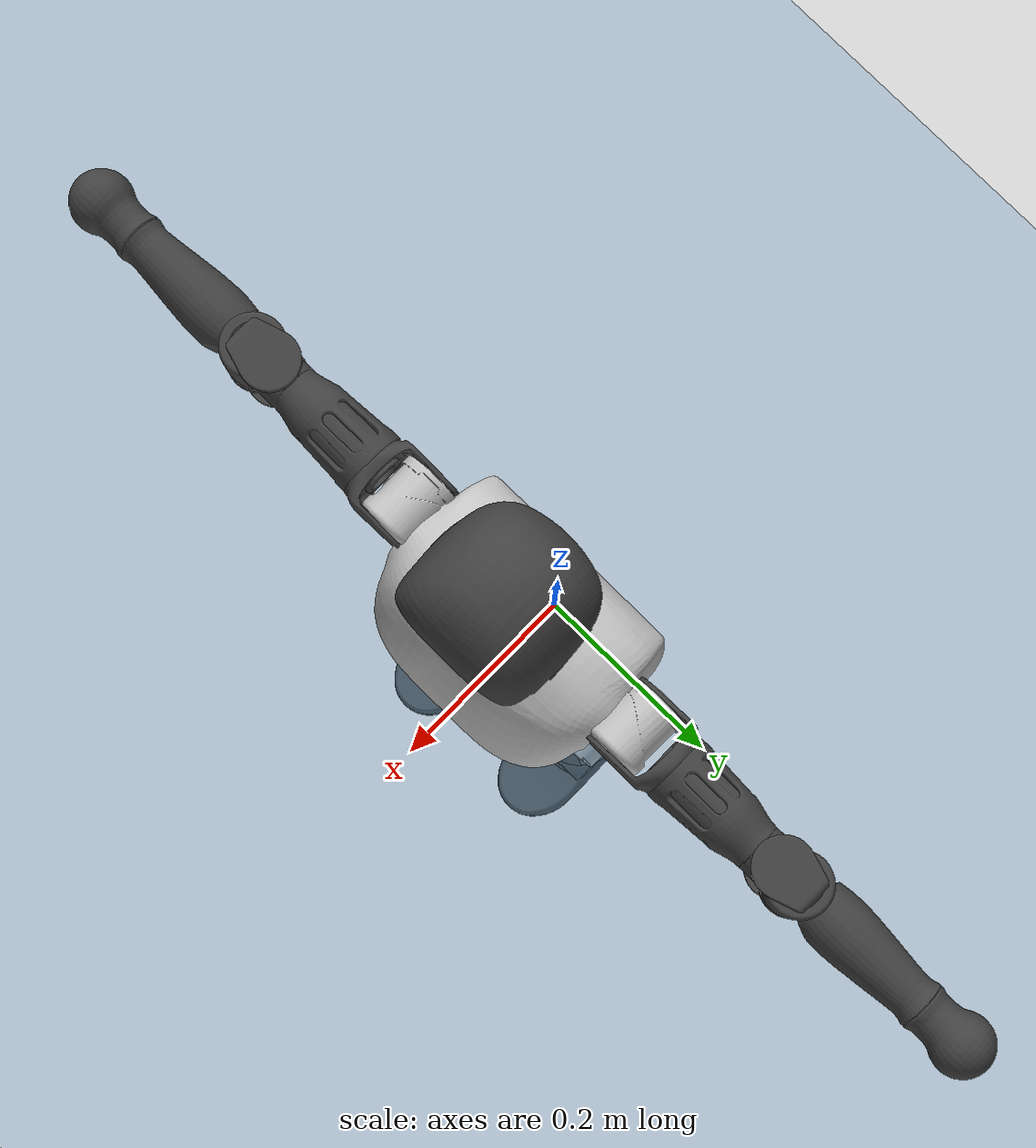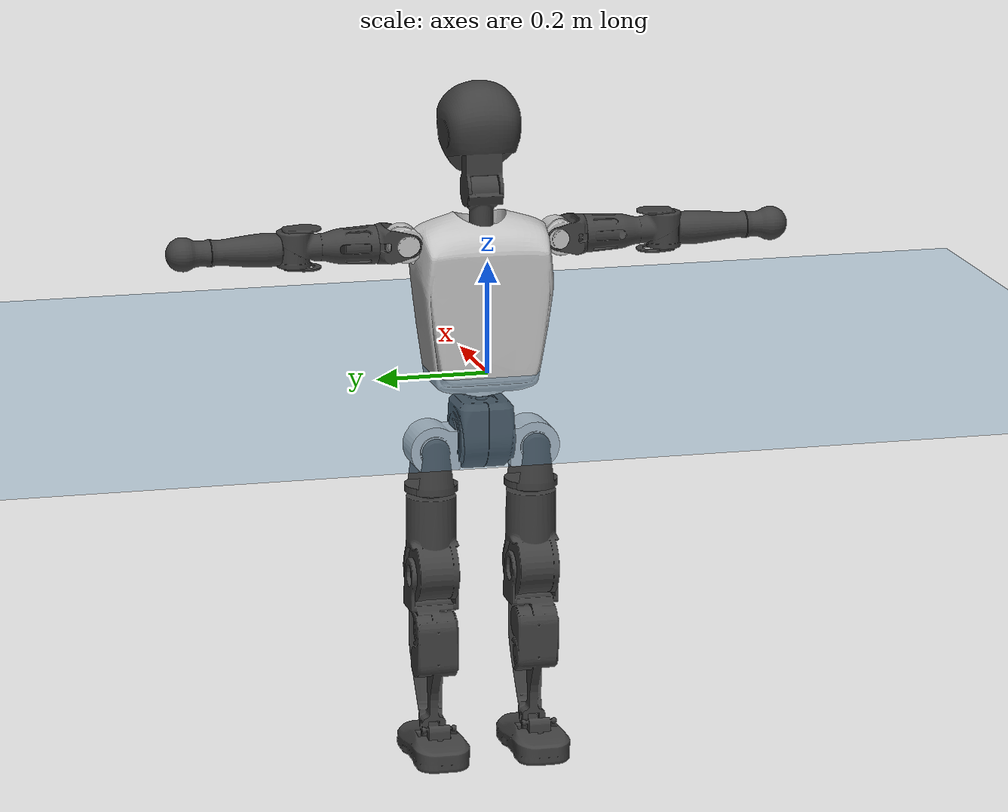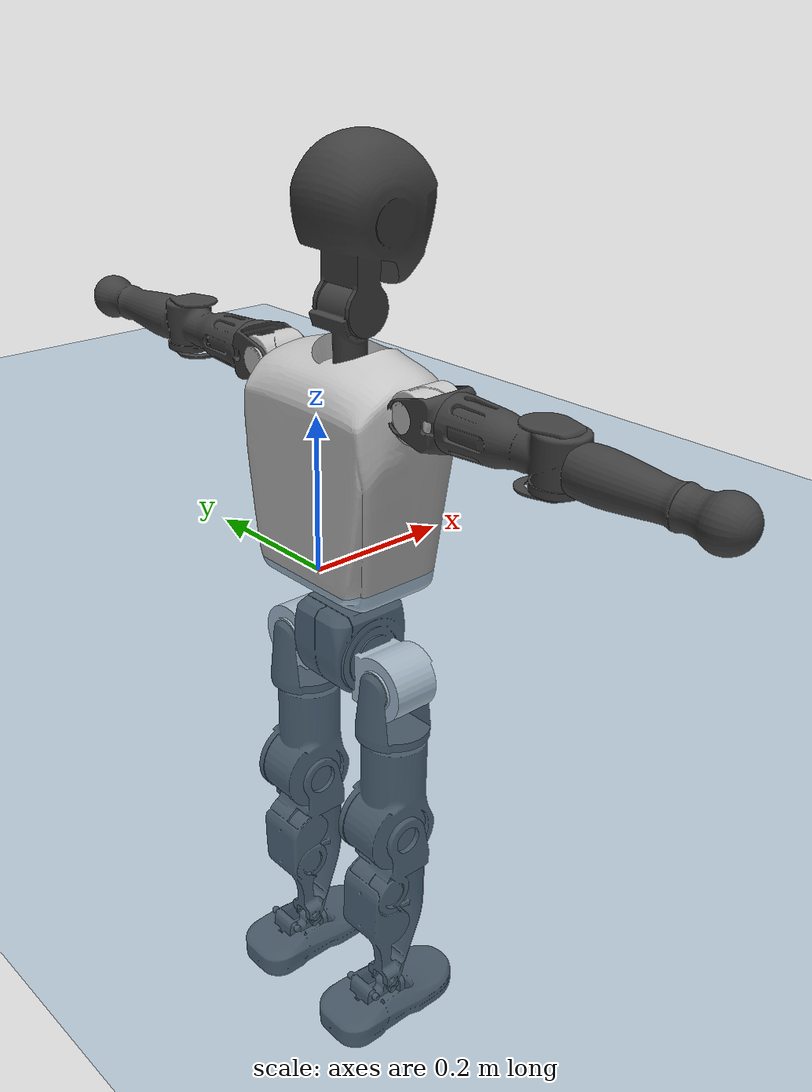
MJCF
<mujoco model="T1">
  <compiler angle="radian" assetdir="assets" balanceinertia="true" inertiafromgeom="false"/>

  <option timestep="0.005" density="1.2" viscosity="2e-05"/>

  <size nkey="1"/>

  <visual>
    <quality shadowsize="8192"/>
    <map shadowclip="0.5"/>
  </visual>

  <default>
    <default class="/">
      <joint armature="0.01" damping="0.01" frictionloss="0.1"/>
      <geom contype="0" conaffinity="0" group="1" solref="-1000 -80"/>
      <site size="0.01 0.005 0.005" group="5"/>
      <general forcelimited="true" biastype="affine" gainprm="25" biasprm="0 -25 -0.6"/>
      <default class="t1">
        <geom rgba="0.25 0.25 0.25 1"/>
        <default class="visual">
          <geom type="mesh" group="2"/>
        </default>
        <default class="collision">
          <geom group="3"/>
        </default>
        <default class="foot">
          <geom size="0.1115 0.05 0.015" type="box" condim="6" group="4" priority="1" solimp="0.015 1 0.015"/>
        </default>
        <default class="reward_collision_sphere">
          <geom group="5" rgba="1 0 0 1"/>
        </default>
      </default>
    </default>
  </default>

  <asset>
    <texture type="skybox" colorspace="auto" name="//unnamed_texture_0" builtin="gradient" rgb1="0.95 0.95 0.95" rgb2="0.95 0.95 0.95" width="100" height="600"/>
    <texture type="2d" colorspace="auto" name="texplane" builtin="checker" rgb1="0.345 0.575 0.748" rgb2="0.345 0.575 0.748" markrgb="1 1 1" width="512" height="512"/>
    <material name="MatPlane" class="/" texture="texplane" texuniform="true" texrepeat="2 2" specular="0.9"/>
    <mesh name="Trunk" class="/" file="Trunk.stl"/>
    <mesh name="H1" class="/" file="H1.stl"/>
    <mesh name="H2" class="/" file="H2.stl"/>
    <mesh name="AL1" class="/" file="AL1.stl"/>
    <mesh name="AL2" class="/" file="AL2.stl"/>
    <mesh name="AL3" class="/" file="AL3.stl"/>
    <mesh name="left_hand_link" class="/" file="left_hand_link.stl"/>
    <mesh name="AR1" class="/" file="AR1.stl"/>
    <mesh name="AR2" class="/" file="AR2.stl"/>
    <mesh name="AR3" class="/" file="AR3.stl"/>
    <mesh name="right_hand_link" class="/" file="right_hand_link.stl"/>
    <mesh name="Waist" class="/" file="Waist.stl"/>
    <mesh name="Hip_Pitch_Left" class="/" file="Hip_Pitch_Left.stl"/>
    <mesh name="Hip_Roll_Left" class="/" file="Hip_Roll_Left.stl"/>
    <mesh name="Hip_Yaw_Left" class="/" file="Hip_Yaw_Left.stl"/>
    <mesh name="Shank_Left" class="/" file="Shank_Left.stl"/>
    <mesh name="Ankle_Cross_Left" class="/" file="Ankle_Cross_Left.stl"/>
    <mesh name="left_foot_link" class="/" file="left_foot_link.stl"/>
    <mesh name="Hip_Pitch_Right" class="/" file="Hip_Pitch_Right.stl"/>
    <mesh name="Hip_Roll_Right" class="/" file="Hip_Roll_Right.stl"/>
    <mesh name="Hip_Yaw_Right" class="/" file="Hip_Yaw_Right.stl"/>
    <mesh name="Shank_Right" class="/" file="Shank_Right.stl"/>
    <mesh name="Ankle_Cross_Right" class="/" file="Ankle_Cross_Right.stl"/>
    <mesh name="right_foot_link" class="/" file="right_foot_link.stl"/>
  </asset>

  <worldbody>
    <geom name="floor" class="/" size="100 100 0.125" type="plane" group="0" material="MatPlane"/>
    <light name="toplight_shadow" class="/" pos="0 0 5" dir="0.0990148 0.0990148 -0.990148" type="directional" ambient="0.04 0.04 0.04" diffuse="0.55 0.55 0.55" specular="0.12 0.12 0.12"/>
    <light name="toplight_fill" class="/" pos="0 0 5" dir="0.0990148 0.0990148 -0.990148" type="directional" castshadow="false" ambient="0.04 0.04 0.04" diffuse="0.3 0.3 0.3" specular="0.08 0.08 0.08"/>
    <body name="trunk" childclass="t1" pos="0.000783686 0.00016343 -0.000945727" quat="1 0.000167772 -0.00025932 0.000333575">
      <inertial pos="0.0441134 6.27394e-05 0.110388" quat="0.999943 0.00212029 -0.0104559 -3.86312e-05" mass="8.70048" diaginertia="0.0320661 0.0363226 0.0730806"/>
      <joint name="//unnamed_joint_0" type="free" armature="0" damping="0" frictionloss="0"/>
      <geom name="//unnamed_geom_1" class="visual" rgba="0.76 0.76 0.76 1" mesh="Trunk"/>
      <geom name="//unnamed_geom_2" class="collision" size="0.0682411 0.0909881 0.136482" pos="0.0486699 0 0.126984" type="box"/>
      <geom name="//unnamed_geom_3" class="reward_collision_sphere" size="0.104636" pos="0.0486699 0 0.10582"/>
      <geom name="//unnamed_geom_4" class="reward_collision_sphere" size="0.0136482" pos="0.0486699 0.0731239 0"/>
      <geom name="//unnamed_geom_5" class="reward_collision_sphere" size="0.0136482" pos="0.0486699 -0.0731239 0"/>
      <geom name="//unnamed_geom_6" class="reward_collision_sphere" size="0.0136482" pos="0.0486699 0.09205 0.190476"/>
      <geom name="//unnamed_geom_7" class="reward_collision_sphere" size="0.0136482" pos="0.0486699 -0.09205 0.190476"/>
      <site name="imu" pos="0.00406318 -0.00218244 -0.00158325" size="0.00909881"/>
      <camera name="track" pos="0 -1.72056 0" quat="0.707107 0.707107 0 0" mode="trackcom"/>
      <camera name="ego_camera" pos="0.0989621 0 0.444443" quat="-0.5 -0.5 0.5 0.5"/>
      <body name="H1" pos="0.0502182 -0.000781817 0.256426" quat="1 0.000458805 0.000114045 0.000161931">
        <inertial pos="-0.00196774 -0.00165481 0.0598591" quat="0.763693 -0.0161008 0.00783483 0.645331" mass="0.336019" diaginertia="8.56851e-05 0.000104884 0.000201947"/>
        <joint name="AAHead_yaw" pos="0 0 0" axis="-0.00204886 -0.00115241 0.999997" range="-1.55479 1.58133" armature="0.00869212" damping="0.00760912" frictionloss="0.0936188"/>
        <geom name="//unnamed_geom_8" class="visual" mesh="H1"/>
        <body name="H2" pos="-0.000627787 -0.000708355 0.0649982" quat="1 -1.73397e-05 0.000149467 8.8988e-05">
          <inertial pos="0.00561409 -0.000406284 0.104194" quat="0.988365 0.107503 -0.0730702 -0.0789802" mass="0.476874" diaginertia="0.000715419 0.000895071 0.00229662"/>
          <joint name="Head_pitch" pos="0 0 0" axis="0.000658861 -1 -0.000211741" range="-1.23199 0.331696" armature="0.00932527" damping="0.00504818" frictionloss="0.0939383"/>
          <geom name="//unnamed_geom_9" class="visual" mesh="H2"/>
          <geom name="//unnamed_geom_10" class="collision" size="0.0727905" pos="0.00811165 0 0.116402"/>
          <geom name="//unnamed_geom_11" class="reward_collision_sphere" size="0.0818893" pos="0.0162233 0 0.10582"/>
        </body>
      </body>
      <body name="AL1" pos="0.047743 0.0927472 0.232288" quat="1 3.52366e-05 0.000443093 8.10761e-06">
        <inertial pos="-0.000246263 0.0385253 -0.00111224" quat="0.504913 0.498166 -0.503801 0.493028" mass="0.406642" diaginertia="0.000491235 0.000620581 0.000393414"/>
        <joint name="Left_Shoulder_Pitch" pos="0 0 0" axis="0.000257577 0.999994 -0.00351983" range="-3.309 1.23445" armature="0.00905795" damping="0.0046801" frictionloss="0.0930946"/>
        <geom name="//unnamed_geom_12" class="visual" rgba="0.76 0.76 0.76 1" mesh="AL1"/>
        <body name="AL2" pos="0.000292236 0.041353 0.000306615" quat="1 0.000221032 -0.000160305 0.000665066">
          <inertial pos="0.00312119 0.0311667 -0.000223434" quat="0.48796 0.511956 -0.487533 0.511965" mass="0.120919" diaginertia="0.000141266 0.00016438 0.00023483"/>
          <joint name="Left_Shoulder_Roll" pos="0 0 0" axis="-0.999995 0.00152761 0.00271325" range="-1.56133 1.74064" armature="0.00946103" damping="0.000975263" frictionloss="0.0932739"/>
          <geom name="//unnamed_geom_13" class="visual" mesh="AL2"/>
          <body name="AL3" pos="0.000387182 0.0537613 -0.000414368" quat="1 -6.38913e-06 0.000280452 -1.19919e-05">
            <inertial pos="-0.000193437 0.0733593 0.000402831" quat="0.707732 0.706468 -0.00412305 0.000979504" mass="0.791733" diaginertia="0.0045622 0.00611439 0.000821218"/>
            <joint name="Left_Elbow_Pitch" pos="0 0 0" axis="0.000214799 -0.999999 0.00147543" range="-2.24498 2.24717" armature="0.00942164" damping="0.00188734" frictionloss="0.0892113"/>
            <geom name="//unnamed_geom_14" class="visual" mesh="AL3"/>
            <geom name="//unnamed_geom_15" class="collision" size="0.0272964 0.0682411" pos="0 0.043014 0" quat="0.707105 0.707108 0 0" type="cylinder"/>
            <geom name="//unnamed_geom_16" class="reward_collision_sphere" size="0.0327557"/>
            <body name="left_hand_link" pos="-0.000409225 0.126895 -0.000100097" quat="1 0.000340633 3.62049e-05 0.000192217">
              <inertial pos="-3.60357e-05 0.094212 0.000556474" quat="0.708302 0.705906 0.00158094 -0.00152884" mass="0.243396" diaginertia="0.00283026 0.00380352 0.000286055"/>
              <joint name="Left_Elbow_Yaw" pos="0 0 0" axis="-0.000310587 0.00140578 0.999999" range="-2.4415 -0.00258044" armature="0.0092044" damping="0.0105458" frictionloss="0.0868296"/>
              <geom name="//unnamed_geom_17" class="visual" mesh="left_hand_link"/>
              <geom name="//unnamed_geom_18" class="collision" size="0.0272964 0.0796146" pos="0 0.111837 0" quat="0.707105 0.707108 0 0" type="cylinder"/>
              <geom name="//unnamed_geom_19" class="reward_collision_sphere" size="0.0454941"/>
              <geom name="//unnamed_geom_20" class="reward_collision_sphere" size="0.0318458" pos="0 0.0946309 0"/>
              <geom name="//unnamed_geom_21" class="reward_collision_sphere" size="0.0318458" pos="0 0.18496 0"/>
            </body>
          </body>
        </body>
      </body>
      <body name="AR1" pos="0.0457692 -0.0915792 0.231595" quat="1 0.000193729 0.000191176 2.41028e-05">
        <inertial pos="-0.0014534 -0.0394901 0.000560556" quat="0.504734 0.496378 -0.502874 0.495954" mass="0.398864" diaginertia="0.000483819 0.000608294 0.000388154"/>
        <joint name="Right_Shoulder_Pitch" pos="0 0 0" axis="0.000400539 -1 -0.000154803" stiffness="0.000338765" range="-1.22424 3.31065" armature="0.00952744" damping="0.00425527" frictionloss="0.0925674"/>
        <geom name="//unnamed_geom_22" class="visual" rgba="0.76 0.76 0.76 1" mesh="AR1"/>
        <body name="AR2" pos="-0.00114041 -0.0397309 0.000403951" quat="1 -2.03669e-05 1.23108e-05 -2.17129e-05">
          <inertial pos="0.00261564 -0.032621 -0.000372585" quat="0.514738 0.48942 -0.509969 0.485226" mass="0.11897" diaginertia="0.000141864 0.000160839 0.000233579"/>
          <joint name="Right_Shoulder_Roll" pos="0 0 0" axis="-0.999986 -0.00405581 -0.00351711" stiffness="0.00195099" range="-1.7373 1.57996" armature="0.00907059" damping="0.00372014" frictionloss="0.0902833"/>
          <geom name="//unnamed_geom_23" class="visual" mesh="AR2"/>
          <body name="AR3" pos="-0.000938194 -0.0525506 0.00100409" quat="1 -6.42544e-06 0.000188098 -0.000174618">
            <inertial pos="-0.00104763 -0.0725501 -0.000415353" quat="0.707233 0.706981 -0.000517545 0.000433542" mass="0.762914" diaginertia="0.00448108 0.00594987 0.000809084"/>
            <joint name="Right_Elbow_Pitch" pos="0 0 0" axis="0.00347798 0.999994 -0.000826924" range="-2.27037 2.27359" armature="0.00942203" damping="0.00808126" frictionloss="0.0883434"/>
            <geom name="//unnamed_geom_24" class="visual" mesh="AR3"/>
            <geom name="//unnamed_geom_25" class="collision" size="0.0272964 0.0682411" pos="0 -0.043014 0" quat="0.707105 0.707108 0 0" type="cylinder"/>
            <geom name="//unnamed_geom_26" class="reward_collision_sphere" size="0.0327557"/>
            <body name="right_hand_link" pos="-0.000525824 -0.126163 -0.000439104" quat="1 0.000162626 5.81822e-05 0.000198459">
              <inertial pos="-0.000788041 -0.0940555 -0.000241749" quat="0.706594 0.707597 0.00458463 -0.00313655" mass="0.250879" diaginertia="0.00283969 0.00383186 0.000281544"/>
              <joint name="Right_Elbow_Yaw" pos="0 0 0" axis="-0.00112902 0.00499724 0.999987" range="-0.0132495 2.46032" armature="0.00885335" damping="0.00998393" frictionloss="0.0905222"/>
              <geom name="//unnamed_geom_27" class="visual" mesh="right_hand_link"/>
              <geom name="//unnamed_geom_28" class="collision" size="0.0272964 0.0796146" pos="0 -0.111837 0" quat="0.707105 0.707108 0 0" type="cylinder"/>
              <geom name="//unnamed_geom_29" class="reward_collision_sphere" size="0.0454941"/>
              <geom name="//unnamed_geom_30" class="reward_collision_sphere" size="0.0318458" pos="0 -0.0946309 0"/>
              <geom name="//unnamed_geom_31" class="reward_collision_sphere" size="0.0318458" pos="0 -0.18496 0"/>
            </body>
          </body>
        </body>
      </body>
      <body name="Waist" pos="0.0500958 -0.0010626 -0.121499" quat="1 -7.71729e-05 0.000312914 0.000358353">
        <inertial pos="0.00170952 -0.000868125 0.00683809" quat="0.98399 -0.0038546 -0.178146 0.00360172" mass="1.96309" diaginertia="0.00188703 0.00249023 0.00627557"/>
        <joint name="Waist" pos="0 0 0" axis="0.00133065 -0.000805986 0.999999" range="-1.56752 1.57077" armature="0.00879767" damping="0.013703" frictionloss="0.0905695"/>
        <geom name="//unnamed_geom_32" class="visual" mesh="Waist"/>
        <body name="Hip_Pitch_Left" pos="-0.000174073 0.0915777 0.000989507" quat="1 -1.35263e-05 7.20068e-07 -3.61707e-05">
          <inertial pos="0.00192217 -0.00742654 -0.0199088" quat="0.975558 0.218873 0.0194723 0.00124894" mass="0.764139" diaginertia="0.000633727 0.00068897 0.00165132"/>
          <joint name="Left_Hip_Pitch" pos="0 0 0" axis="-0.000264115 0.999998 -0.00205643" stiffness="0.00148637" range="-1.80548 1.58229" armature="0.00903231" damping="0.0037165" frictionloss="0.0887572"/>
          <geom name="//unnamed_geom_33" class="visual" rgba="0.76 0.76 0.76 1" mesh="Hip_Pitch_Left"/>
          <body name="Hip_Roll_Left" pos="0.000386784 -0.000239212 -0.0208872" quat="1 -0.00030464 -0.000243272 -0.000146936">
            <inertial pos="0.00188343 5.30907e-06 -0.0567196" quat="0.706862 -0.00824553 -0.0042772 0.70729" mass="0.283349" diaginertia="0.000608512 0.000703273 0.000669175"/>
            <joint name="Left_Hip_Roll" pos="0 0 0" axis="-0.999989 0.00452252 -0.00132072" stiffness="0.00160829" range="-1.56482 0.185055" armature="0.0090314" damping="0.0110634" frictionloss="0.0936176"/>
            <geom name="//unnamed_geom_34" class="visual" mesh="Hip_Roll_Left"/>
            <geom name="//unnamed_geom_35" class="reward_collision_sphere" size="0.0500435"/>
            <body name="Hip_Yaw_Left" pos="0.00185152 -0.000506007 -0.0874608" quat="1 1.37133e-05 0.000166273 -6.02419e-05">
              <inertial pos="-0.00552908 -0.000569904 -0.0949937" quat="0.699098 -0.0306048 -0.0320309 0.713652" mass="1.65519" diaginertia="0.00915236 0.0121404 0.0035059"/>
              <joint name="Left_Hip_Yaw" pos="0 0 0" axis="-0.000253871 7.70835e-05 -1" stiffness="0.00190328" range="-1.02409 1.01194" armature="0.0090885" damping="0.0070306" frictionloss="0.0902276"/>
              <geom name="//unnamed_geom_36" class="visual" mesh="Hip_Yaw_Left"/>
              <geom name="//unnamed_geom_37" class="collision" size="0.0454941 0.0727905" type="cylinder"/>
              <body name="Shank_Left" pos="-0.0112732 0.000647441 -0.142557" quat="1 0.000183394 0.000149268 0.000143006">
                <inertial pos="-0.00461407 -0.00046013 -0.131697" quat="0.997658 -0.000304226 -0.0227206 0.0645201" mass="1.3062" diaginertia="0.0124127 0.0162843 0.00250984"/>
                <joint name="Left_Knee_Pitch" pos="0 0 0" axis="-0.000448238 1 0.000360195" range="-0.0205824 2.34083" armature="0.00890728" damping="0.00425758" frictionloss="0.0982353"/>
                <geom name="//unnamed_geom_38" class="visual" mesh="Shank_Left"/>
                <geom name="//unnamed_geom_39" class="collision" size="0.0454941 0.0682411" pos="0 0 -0.126984" type="cylinder"/>
                <geom name="//unnamed_geom_40" class="reward_collision_sphere" size="0.0591423"/>
                <body name="Ankle_Cross_Left" pos="-0.000555016 -5.36648e-05 -0.295855" quat="1 -7.85937e-05 0.000104807 -7.9731e-05">
                  <inertial pos="-0.00265102 0.0002454 -0.00938955" quat="0.445268 0.550775 0.550017 0.442566" mass="0.0544111" diaginertia="9.96511e-06 1.16906e-05 1.46909e-05"/>
                  <joint name="Left_Ankle_Pitch" pos="0 0 0" axis="0.00603496 0.999981 0.000979651" range="-0.856728 0.34699" armature="0.00911069" damping="0.00834188" frictionloss="0.0951969"/>
                  <geom name="//unnamed_geom_41" class="visual" mesh="Ankle_Cross_Left"/>
                  <body name="left_foot_link" pos="-0.000761398 -0.000951542 -0.0124488" quat="1 0.000442103 0.000461075 -3.53181e-05">
                    <inertial pos="0.000456218 -0.000117824 -0.00890681" quat="2.62265e-05 0.620921 -0.00039654 0.783873" mass="0.509362" diaginertia="0.000938962 0.00111009 0.00288013"/>
                    <joint name="Left_Ankle_Roll" pos="0 0 0" axis="-0.999999 -0.000690767 -0.000769412" range="-0.445044 0.458781" armature="0.00907067" damping="0.00865445" frictionloss="0.0881417"/>
                    <geom name="//unnamed_geom_42" class="visual" mesh="left_foot_link"/>
                    <geom name="left_foot" class="foot" size="0.102719 0.0457181 0.0132014" pos="0.00811165 0 -0.015873"/>
                    <geom name="//unnamed_geom_44" class="reward_collision_sphere" size="0.0473138" pos="0.00811165 0 -0.015873"/>
                    <geom name="//unnamed_geom_45" class="reward_collision_sphere" size="0.0272964" pos="0.0770607 -0.0197865 -0.015873"/>
                    <geom name="//unnamed_geom_46" class="reward_collision_sphere" size="0.0272964" pos="-0.0567815 -0.0197865 -0.015873"/>
                    <site name="left_foot" class="foot" pos="0.00811165 0 -0.015873" size="0.00909881"/>
                  </body>
                </body>
              </body>
            </body>
          </body>
        </body>
        <body name="Hip_Pitch_Right" pos="-0.000261616 -0.0905142 -0.000239969" quat="1 -6.06622e-06 -6.53149e-06 4.88732e-05">
          <inertial pos="0.00135799 0.00671267 -0.0189467" quat="0.973308 -0.228969 0.0149738 -0.00458703" mass="0.766303" diaginertia="0.00063146 0.000683399 0.0016327"/>
          <joint name="Right_Hip_Pitch" pos="0 0 0" axis="0.000257402 -1 0.000476801" range="-1.57286 1.79516" armature="0.00909573" damping="0.00786512" frictionloss="0.0886312"/>
          <geom name="//unnamed_geom_47" class="visual" rgba="0.76 0.76 0.76 1" mesh="Hip_Pitch_Right"/>
          <body name="Hip_Roll_Right" pos="-8.42568e-07 -0.000406468 -0.0202364" quat="1 -0.00021853 -9.15662e-05 -1.71132e-05">
            <inertial pos="0.00104963 0.000805942 -0.0565703" quat="0.709944 -0.00810272 -0.0047899 0.704196" mass="0.292085" diaginertia="0.000616231 0.000718012 0.000692236"/>
            <joint name="Right_Hip_Roll" pos="0 0 0" axis="-0.999999 -0.000840454 -0.00065988" range="-0.184413 1.56177" armature="0.00863703" damping="0.00817667" frictionloss="0.0952787"/>
            <geom name="//unnamed_geom_48" class="visual" mesh="Hip_Roll_Right"/>
            <geom name="//unnamed_geom_49" class="reward_collision_sphere" size="0.0500435"/>
            <body name="Hip_Yaw_Right" pos="0.000755152 -0.000202814 -0.0872432" quat="1 -4.68975e-07 -1.56689e-06 9.44082e-05">
              <inertial pos="-0.00583099 -0.000680346 -0.0935552" quat="0.714021 -0.033303 -0.0323403 0.698584" mass="1.65324" diaginertia="0.00913211 0.0119902 0.00345661"/>
              <joint name="Right_Hip_Yaw" pos="0 0 0" axis="0.000974457 -0.00354315 -0.999993" stiffness="0.00198138" range="-1.01361 1.00536" armature="0.00858115" damping="0.010679" frictionloss="0.0889467"/>
              <geom name="//unnamed_geom_50" class="visual" mesh="Hip_Yaw_Right"/>
              <geom name="//unnamed_geom_51" class="collision" size="0.0454941 0.0727905" type="cylinder"/>
              <body name="Shank_Right" pos="-0.0102094 -0.000347631 -0.141165" quat="1 -9.43484e-05 5.02157e-05 6.91265e-05">
                <inertial pos="-0.00403483 0.00135117 -0.130242" quat="0.999205 0.000446346 -0.023087 -0.0325077" mass="1.36734" diaginertia="0.0127695 0.0168336 0.00267605"/>
                <joint name="Right_Knee_Pitch" pos="0 0 0" axis="0.00167954 -0.999999 1.61177e-05" range="-2.34162 -0.00112823" armature="0.00911257" damping="0.00990821" frictionloss="0.0867998"/>
                <geom name="//unnamed_geom_52" class="visual" mesh="Shank_Right"/>
                <geom name="//unnamed_geom_53" class="collision" size="0.0454941 0.0682411" pos="0 0 -0.126984" type="cylinder"/>
                <geom name="//unnamed_geom_54" class="reward_collision_sphere" size="0.0591423"/>
                <body name="Ankle_Cross_Right" pos="-0.000539672 -0.00118579 -0.296525" quat="1 -4.19556e-05 3.38141e-05 1.69683e-05">
                  <inertial pos="-0.00331342 -0.00058088 -0.00862656" quat="0.440211 0.552497 0.549451 0.446169" mass="0.0552" diaginertia="1.01241e-05 1.21118e-05 1.52147e-05"/>
                  <joint name="Right_Ankle_Pitch" pos="0 0 0" axis="0.00430685 -0.999968 -0.00670282" stiffness="0.00141395" range="-0.339446 0.863276" armature="0.00924421" damping="0.00782088" frictionloss="0.0897652"/>
                  <geom name="//unnamed_geom_55" class="visual" mesh="Ankle_Cross_Right"/>
                  <body name="right_foot_link" pos="-0.000136028 -0.000857607 -0.0131252" quat="1 -2.70019e-05 -0.000122956 -5.15809e-05">
                    <inertial pos="0.00104144 -8.12384e-05 -0.0104039" quat="0.000301074 0.620422 -0.00162316 0.784266" mass="0.516811" diaginertia="0.000964703 0.0011256 0.00293678"/>
                    <joint name="Right_Ankle_Roll" pos="0 0 0" axis="-0.999998 -0.0014088 0.00162984" range="-0.438683 0.452005" armature="0.00885456" damping="0.00772519" frictionloss="0.0874978"/>
                    <geom name="//unnamed_geom_56" class="visual" mesh="right_foot_link"/>
                    <geom name="right_foot" class="foot" size="0.0991597 0.0452672 0.0141567" pos="0.00811165 0 -0.015873"/>
                    <geom name="//unnamed_geom_58" class="reward_collision_sphere" size="0.0363952"/>
                    <geom name="//unnamed_geom_59" class="reward_collision_sphere" size="0.0272964" pos="0.00811165 0 -0.015873"/>
                    <geom name="//unnamed_geom_60" class="reward_collision_sphere" size="0.0272964" pos="0.0770607 0.0197865 -0.015873"/>
                    <geom name="//unnamed_geom_61" class="reward_collision_sphere" size="0.0272964" pos="-0.0567815 0.0197865 -0.015873"/>
                    <site name="right_foot" class="foot" pos="0.00811165 0 -0.015873" size="0.00909881"/>
                  </body>
                </body>
              </body>
            </body>
          </body>
        </body>
      </body>
    </body>
  </worldbody>

  <contact>
    <pair class="/" geom1="floor" geom2="left_foot" name="//unnamed_contact_0"/>
    <pair class="/" geom1="floor" geom2="right_foot" name="//unnamed_contact_1"/>
  </contact>

  <actuator>
    <general name="AAHead_yaw" class="/" joint="AAHead_yaw" forcerange="-6.29424 6.29424" gainprm="22.8225" biasprm="0 -22.8225 -0.540468"/>
    <general name="Head_pitch" class="/" joint="Head_pitch" forcerange="-6.21519 6.21519" gainprm="22.8225" biasprm="0 -22.8225 -0.540468"/>
    <general name="Left_Shoulder_Pitch" class="/" joint="Left_Shoulder_Pitch" forcerange="-16.2277 16.2277" gainprm="22.8225" biasprm="0 -22.8225 -0.540468"/>
    <general name="Left_Shoulder_Roll" class="/" joint="Left_Shoulder_Roll" forcerange="-15.9663 15.9663" gainprm="22.8225" biasprm="0 -22.8225 -0.540468"/>
    <general name="Left_Elbow_Pitch" class="/" joint="Left_Elbow_Pitch" forcerange="-16.2883 16.2883" gainprm="22.8225" biasprm="0 -22.8225 -0.540468"/>
    <general name="Left_Elbow_Yaw" class="/" joint="Left_Elbow_Yaw" forcerange="-17.2738 17.2738" gainprm="22.8225" biasprm="0 -22.8225 -0.540468"/>
    <general name="Right_Shoulder_Pitch" class="/" joint="Right_Shoulder_Pitch" forcerange="-16.5399 16.5399" gainprm="22.8225" biasprm="0 -22.8225 -0.540468"/>
    <general name="Right_Shoulder_Roll" class="/" joint="Right_Shoulder_Roll" forcerange="-16.2169 16.2169" gainprm="22.8225" biasprm="0 -22.8225 -0.540468"/>
    <general name="Right_Elbow_Pitch" class="/" joint="Right_Elbow_Pitch" forcerange="-15.914 15.914" gainprm="22.8225" biasprm="0 -22.8225 -0.540468"/>
    <general name="Right_Elbow_Yaw" class="/" joint="Right_Elbow_Yaw" forcerange="-16.4954 16.4954" gainprm="22.8225" biasprm="0 -22.8225 -0.540468"/>
    <general name="Waist" class="/" joint="Waist" forcerange="-27.415 27.415" gainprm="22.8225" biasprm="0 -22.8225 -0.540468"/>
    <general name="Left_Hip_Pitch" class="/" joint="Left_Hip_Pitch" forcerange="-39.5478 39.5478" gainprm="22.8225" biasprm="0 -22.8225 -0.540468"/>
    <general name="Left_Hip_Roll" class="/" joint="Left_Hip_Roll" forcerange="-26.8124 26.8124" gainprm="22.8225" biasprm="0 -22.8225 -0.540468"/>
    <general name="Left_Hip_Yaw" class="/" joint="Left_Hip_Yaw" forcerange="-26.946 26.946" gainprm="22.8225" biasprm="0 -22.8225 -0.540468"/>
    <general name="Left_Knee_Pitch" class="/" joint="Left_Knee_Pitch" forcerange="-54.5138 54.5138" gainprm="22.8225" biasprm="0 -22.8225 -0.540468"/>
    <general name="Left_Ankle_Pitch" class="/" joint="Left_Ankle_Pitch" forcerange="-18.1739 18.1739" gainprm="22.8225" biasprm="0 -22.8225 -0.540468"/>
    <general name="Left_Ankle_Roll" class="/" joint="Left_Ankle_Roll" forcerange="-13.6743 13.6743" gainprm="22.8225" biasprm="0 -22.8225 -0.540468"/>
    <general name="Right_Hip_Pitch" class="/" joint="Right_Hip_Pitch" forcerange="-41.2395 41.2395" gainprm="22.8225" biasprm="0 -22.8225 -0.540468"/>
    <general name="Right_Hip_Roll" class="/" joint="Right_Hip_Roll" forcerange="-27.2835 27.2835" gainprm="22.8225" biasprm="0 -22.8225 -0.540468"/>
    <general name="Right_Hip_Yaw" class="/" joint="Right_Hip_Yaw" forcerange="-27.0264 27.0264" gainprm="22.8225" biasprm="0 -22.8225 -0.540468"/>
    <general name="Right_Knee_Pitch" class="/" joint="Right_Knee_Pitch" forcerange="-56.4404 56.4404" gainprm="22.8225" biasprm="0 -22.8225 -0.540468"/>
    <general name="Right_Ankle_Pitch" class="/" joint="Right_Ankle_Pitch" forcerange="-18.4365 18.4365" gainprm="22.8225" biasprm="0 -22.8225 -0.540468"/>
    <general name="Right_Ankle_Roll" class="/" joint="Right_Ankle_Roll" forcerange="-13.2021 13.2021" gainprm="22.8225" biasprm="0 -22.8225 -0.540468"/>
  </actuator>

  <sensor>
    <gyro site="imu" name="imu_angular_velocity"/>
    <velocimeter site="imu" name="imu_linear_velocity"/>
    <framelinvel objtype="site" objname="left_foot" name="left_foot_global_linear_velocity"/>
    <framelinvel objtype="site" objname="right_foot" name="right_foot_global_linear_velocity"/>
  </sensor>

  <keyframe>
    <key name="home" qpos="0 0 0.6385 1 0 0 0 0 0 0 1.4 0 -0.4 0 -1.4 0 0.4 0 -0.4 0 0 0.8 -0.4 0 0.4 0 0 -0.8 0.4 0"/>
  </keyframe>
</mujoco>
